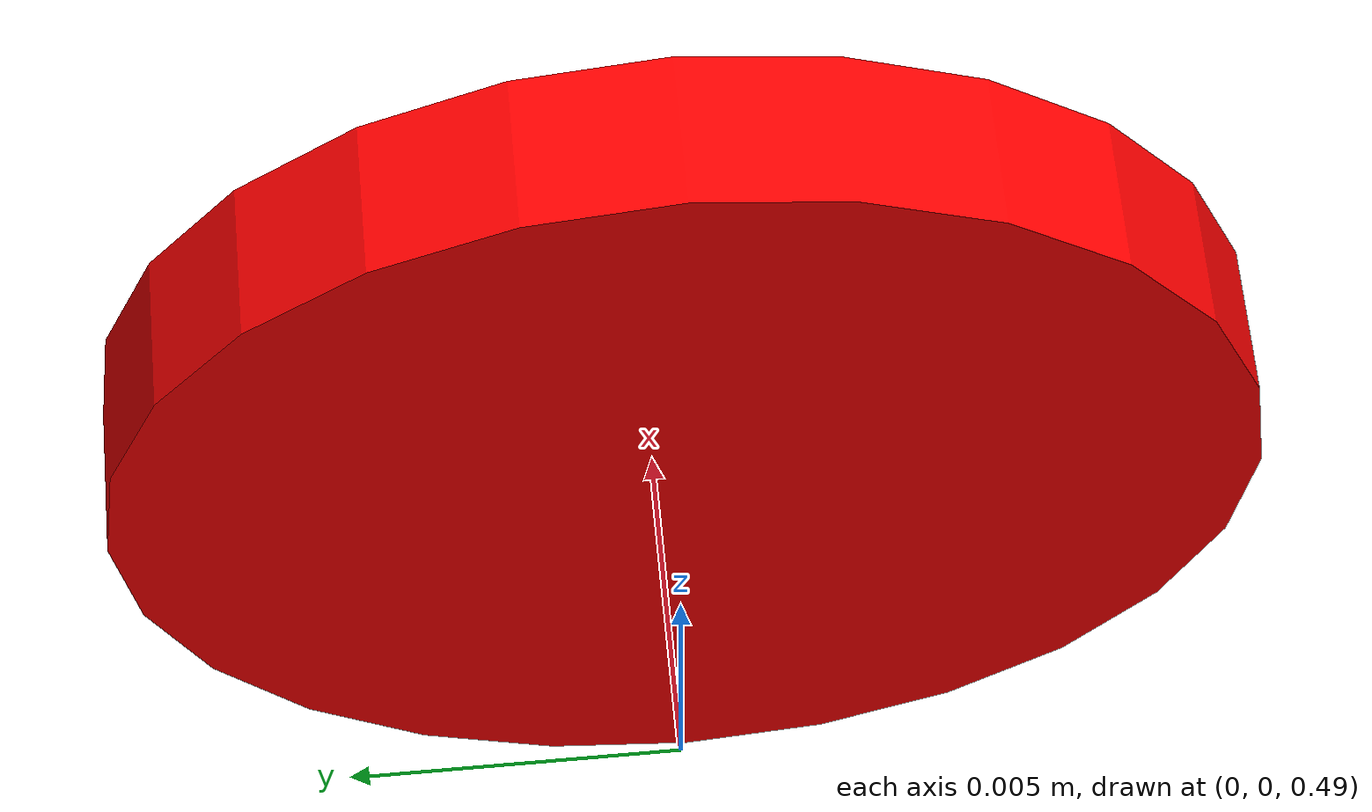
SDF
<?xml version='1.0'?>
<sdf version="1.6">
    <model name='sensor/2'>
        <pose>0.0 0.0 0.5 0 0 0</pose>
        <static>true</static>
        <link name="link">
            <inertial>
                <mass>0</mass>
                <inertia>
                    <ixx>0.166667</ixx>
                    <ixy>0</ixy>
                    <ixz>0</ixz>
                    <iyy>0.166667</iyy>
                    <iyz>0</iyz>
                    <izz>0.166667</izz>
                </inertia>
                <pose frame=''>0 0 0 0 0 0</pose>
            </inertial>
            <gravity>0</gravity>
            <self_collide>0</self_collide>
            <kinematic>0</kinematic>
            <enable_wind>0</enable_wind>
            <visual name='visual'>
                <pose frame=''>0 0 0 0 1.57 0</pose>
                <geometry>
                    <cylinder>
                        <radius>0.0075</radius>
                        <length>0.002</length>
                    </cylinder>
                </geometry>
                <material>
                    <lighting>1</lighting>
                    <script>
                        <uri>file://media/materials/scripts/gazebo.material</uri>
                        <name>Gazebo/Grey</name>
                    </script>
                    <shader type='vertex'>
                        <normal_map>__default__</normal_map>
                    </shader>
                    <ambient>1 0 0 1</ambient>
                    <diffuse>0.7 0.7 0.7 1</diffuse>
                    <specular>0.01 0.01 0.01 1</specular>
                    <emissive>0 0 0 1</emissive>
                </material>
                <transparency>0</transparency>
                <cast_shadows>1</cast_shadows>
            </visual>
            <sensor name="webcam" type="camera">
                <update_rate>100.0</update_rate>
                <plugin name="webcam_plugin" filename="libgazebo_ros_camera.so">
                    <imageTopicName>image_raw</imageTopicName>
                    <robotNamespace>camera_plugin</robotNamespace>
                    <cameraName>webcam2</cameraName>
                </plugin>
                <camera>
                    <save enabled="false">
                        <path>/tmp/camera_save_tutorial</path>
                    </save>
                    <horizontal_fov>0.85</horizontal_fov>
                    <image>
                        <width>10</width>
                        <height>10</height>
                        <format>R8G8B8</format>
                    </image>
                    <clip>
                        <near>0.00001</near>
                        <far>0.1</far>
                    </clip>
                </camera>
                <visualize>false</visualize>
                <always_on>1</always_on>
            </sensor>
        </link>
    </model>
</sdf>
